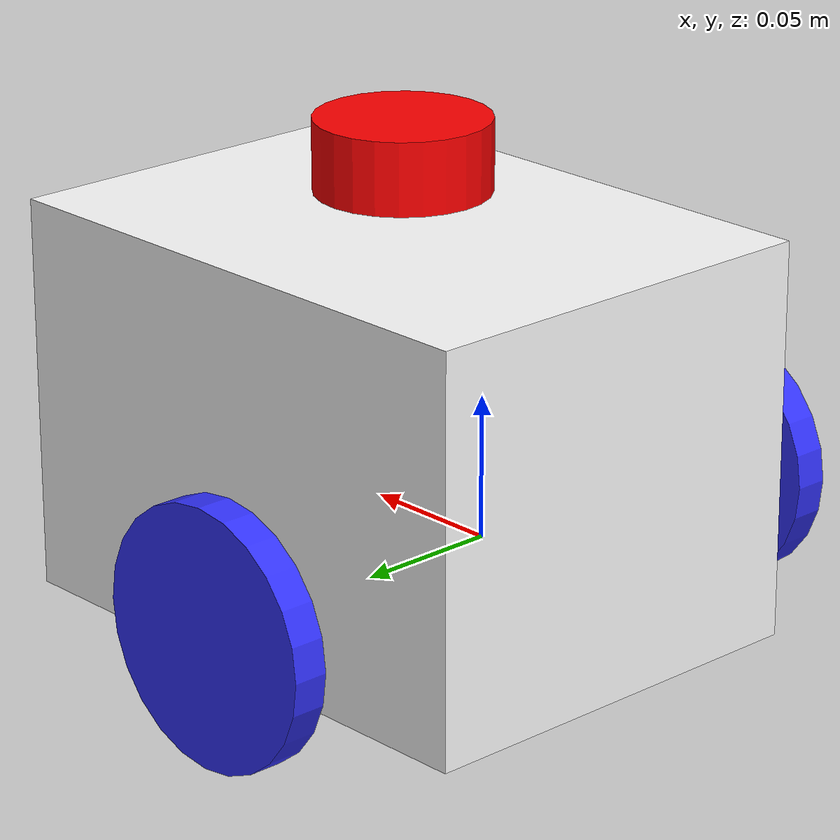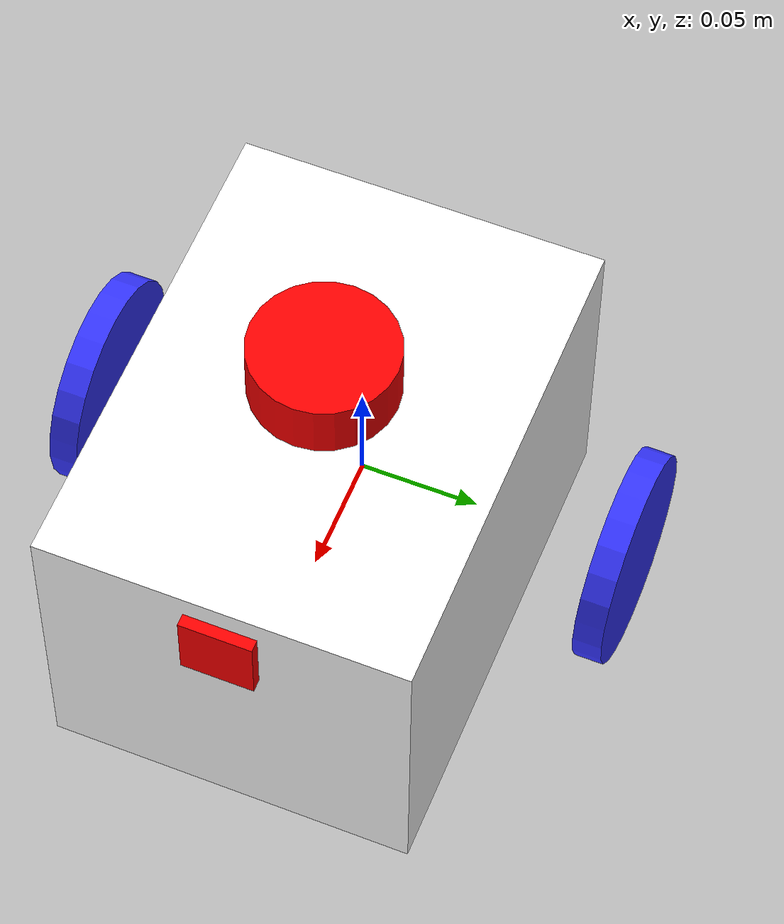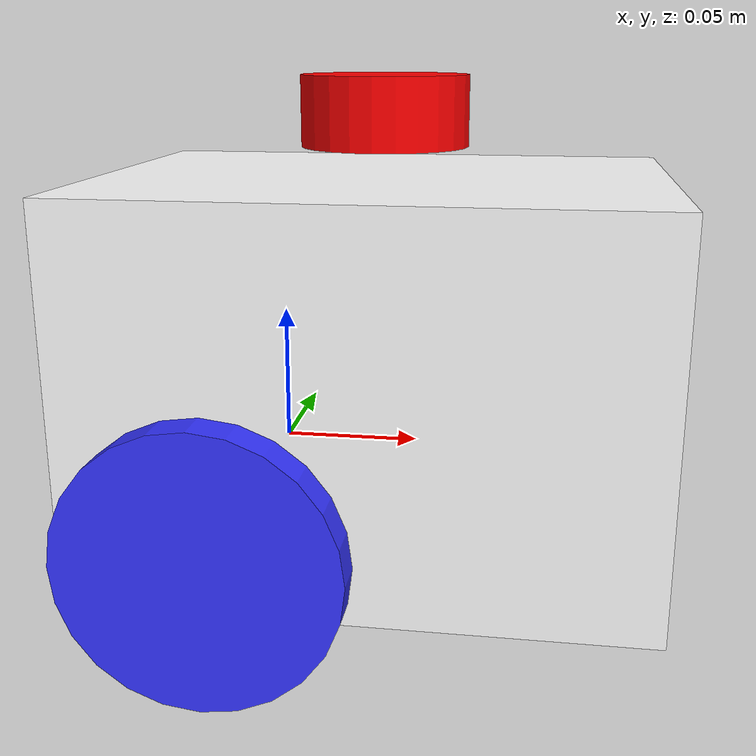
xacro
<?xml version="1.0"?>
<robot xmlns:xacro="http://www.ros.org/wiki/xacro"  name="robot">

    <xacro:arg name="use_ros2_control" default="true"/>
    <xacro:arg name="sim_mode" default="false"/>

    <xacro:include filename="robot_core.xacro" />

    <xacro:if value="$(arg use_ros2_control)">
        <xacro:include filename="ros2_control.xacro" />
    </xacro:if>
    <xacro:unless value="$(arg use_ros2_control)">
        <xacro:include filename="gazebo_control.xacro" />
    </xacro:unless>

    <xacro:include filename="lidar.xacro" />
    <xacro:include filename="camera.xacro"/> <!--safe to use but camera functionality incomplete-->

</robot>

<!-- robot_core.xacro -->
<robot xmlns:xacro="http://www.ros.org/wiki/xacro" >

    <xacro:include filename="inertial_macros.xacro"/>

    <xacro:property name="chassis_length" value="0.2032"/>
    <xacro:property name="chassis_width" value="0.1524"/>
    <xacro:property name="chassis_height" value="0.1397"/>
    <xacro:property name="chassis_mass" value="1.0"/>
    <xacro:property name="wheel_radius" value="0.04445"/>
    <xacro:property name="wheel_thickness" value="0.01215"/>
    <xacro:property name="wheel_mass" value="0.01"/>
    <xacro:property name="wheel_offset_x" value="0.0635"/>
    <xacro:property name="wheel_offset_y" value="0.1143"/>
    <xacro:property name="wheel_offset_z" value="0.0381"/>
    <xacro:property name="caster_wheel_radius" value="0.014"/>
    <xacro:property name="caster_wheel_mass" value="0.01"/>
    <xacro:property name="caster_wheel_offset_x" value="0.1715"/>
    <xacro:property name="caster_wheel_offset_z" value="${wheel_offset_z - wheel_radius + caster_wheel_radius}"/>

    <material name="white">
        <color rgba="1 1 1 1" />
    </material>

    <material name="orange">
        <color rgba="1 0.3 0.1 1" />
    </material>

    <material name="blue">
        <color rgba="0.2 0.2 1 1" />
    </material>

    <material name="black">
        <color rgba="0 0 0 1" />
    </material>

    <material name="red">
        <color rgba="1 0 0 1" />
    </material>

    <!-- BASE LINK -->
    <!--baselink will be on the axes of the drive wheels, centered between the wheels-->
    <!--the rest of the robot will be described w.r. to base_link-->
    <link name="base_link">

    </link>

    <!-- BASE_FOOTPRINT LINK -->

    <joint name="base_footprint_joint" type="fixed">
        <parent link="base_link"/>
        <child link="base_footprint"/>
        <origin xyz="0 0 0" rpy="0 0 0"/>
    </joint>

    <link name="base_footprint">
    </link>

    <!-- CHASSIS LINK -->

    <joint name="chassis_joint" type="fixed">
        <parent link="base_link"/>
        <child link="chassis"/>
        <!--need to adjust origin to align wheels on chassis-->
        <origin xyz="${-wheel_offset_x} 0 ${-wheel_offset_z}"/>
    </joint>

    <link name="chassis">
        <visual>
            <!--need to adjust origin of chassis box to align robopet wheel positions-->
            <!--need to change box geometry, collision, and inertial tags-->
            <origin xyz="${chassis_length/2} 0 ${chassis_height/2}"/>
            <geometry>
                <box size="${chassis_length} ${chassis_width} ${chassis_height}"/>
            </geometry>
            <material name="white"/>
        </visual>
        <collision>
            <origin xyz="${chassis_length/2} 0 ${chassis_height/2}"/>
            <geometry>
                <box size="${chassis_length} ${chassis_width} ${chassis_height}"/>
            </geometry>
        </collision>
        <xacro:inertial_box mass="0.5" x="${chassis_length}" y="${chassis_width}" z="${chassis_height}">
            <origin xyz="${chassis_length/2} 0 ${chassis_height/2}" rpy="0 0 0"/>
        </xacro:inertial_box>
    </link>

    <gazebo reference="chassis">
        <material>Gazebo/White</material>
    </gazebo>

    <!-- LEFT WHEEL LINK -->

    <joint name="left_wheel_joint" type="continuous">
        <parent link="base_link"/>
        <child link="left_wheel"/>
        <!--adjust wheel joint origin to proper chassis width-->
        <origin xyz="0 ${wheel_offset_y} 0" rpy="-${pi/2} 0 0"/>
        <axis xyz="0 0 1"/>
    </joint>

    <link name="left_wheel">
        <!--need to adjust wheel geometry and inertial properties-->
        <visual>
            <geometry>
                <cylinder radius="${wheel_radius}" length="${wheel_thickness}"/>
            </geometry>
            <material name="blue"/>
        </visual>
        <collision>
            <geometry>
                <sphere radius="${wheel_radius}"/>
            </geometry>
        </collision>
        <xacro:inertial_cylinder mass="${wheel_mass}" length="${wheel_thickness}" radius="${wheel_radius}">
            <origin xyz="0 0 0" rpy="0 0 0"/>
        </xacro:inertial_cylinder>
    </link>

    <gazebo reference="left_wheel">
        <material>Gazebo/Blue</material>
    </gazebo>

    <!-- RIGHT WHEEL LINK -->

    <joint name="right_wheel_joint" type="continuous">
        <parent link="base_link"/>
        <child link="right_wheel"/>
        <!--adjust wheel joint origin to proper chassis width-->
        <origin xyz="0 ${-wheel_offset_y} 0" rpy="${pi/2} 0 0"/>
        <axis xyz="0 0 -1"/>
    </joint>

    <link name="right_wheel">
        <!--need to adjust wheel geometry and inertial properties-->
        <visual>
            <geometry>
                <cylinder radius="${wheel_radius}" length="${wheel_thickness}"/>
            </geometry>
            <material name="blue"/>
        </visual>
        <collision>
            <geometry>
                <sphere radius="${wheel_radius}"/>
            </geometry>
        </collision>
        <xacro:inertial_cylinder mass="${wheel_mass}" length="${wheel_thickness}" radius="${wheel_radius}">
            <origin xyz="0 0 0" rpy="0 0 0"/>
        </xacro:inertial_cylinder>
    </link>

    <gazebo reference="right_wheel">
        <material>Gazebo/Blue</material>
    </gazebo>

    <!-- CASTER WHEEL LINK -->
    <!--gonna keep caster wheel as is since it doesn't change much-->

    <joint name="caster_wheel_joint" type="fixed">
        <parent link="chassis"/>
        <child link="caster_wheel"/>
        <!--may adjust origin to align it on bot-->
        <origin xyz="${caster_wheel_offset_x} 0 ${caster_wheel_offset_z}"/>
    </joint>

    <link name="caster_wheel">
        <!--would consider adjusting radius to replicate ride height-->
        <visual>
            <geometry>
                <sphere radius="${caster_wheel_radius}"/>
            </geometry>
            <material name="black"/>
        </visual>
        <collision>
            <geometry>
                <sphere radius="${caster_wheel_radius}"/>
            </geometry>
        </collision>
        <xacro:inertial_sphere mass="${caster_wheel_mass}" radius="${caster_wheel_radius}">
            <origin xyz="0 0 0" rpy="0 0 0"/>
        </xacro:inertial_sphere>
    </link>

    <gazebo reference="caster_wheel">
        <material>Gazebo/Black</material>
        <mu1 value="0.001"/>
        <mu2 value="0.001"/>
    </gazebo>

</robot>

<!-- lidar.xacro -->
<robot xmlns:xacro="http://www.ros.org/wiki/xacro" >

    <joint name="laser_joint" type="fixed">
        <parent link="chassis"/>
        <child link="laser_frame"/>
        <origin xyz="0.1016 0 0.1625" rpy="0 0 0"/>
    </joint>

    <link name="laser_frame">
        <visual>
            <geometry>
                <cylinder radius="0.03" length="0.025"/>
            </geometry>
            <material name="red"/>
        </visual>
        <collision>
            <geometry>
                <cylinder radius="0.03" length="0.025"/>
            </geometry>
        </collision>
        <xacro:inertial_cylinder mass="0.1" length="0.025" radius="0.03">
            <origin xyz="0 0 0" rpy="0 0 0"/>
        </xacro:inertial_cylinder>
    </link>

    <gazebo reference="laser_frame">
        <material>Gazebo/Red</material>
        <sensor name="laser" type="ray">
            <pose> 0 0 0 0 0 0 </pose>
            <visualize>false</visualize>
            <update_rate>10</update_rate>
            <ray>
                <scan>
                    <horizontal>
                        <samples>360</samples>
                        <resolution>1</resolution>
                        <min_angle>-3.14</min_angle>
                        <max_angle>3.14</max_angle>
                    </horizontal>
                </scan>
                <range>
                    <min>0.3</min>
                    <max>12</max>
                    <resolution>0.01</resolution>
                </range>
            </ray>
            <plugin name="laser_controller" filename="libgazebo_ros_ray_sensor.so">
                <ros>
                    <argument>~/out:=scan</argument>
                </ros>
                <output_type>sensor_msgs/LaserScan</output_type>
                <frame_name>laser_frame</frame_name>
            </plugin>
        </sensor>
    </gazebo>

</robot>

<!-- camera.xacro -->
<robot xmlns:xacro="http://www.ros.org/wiki/xacro" >

    <joint name="camera_joint" type="fixed">
        <parent link="chassis"/>
        <child link="camera_link"/>
        <origin xyz="0.2032 0 0.1143" rpy="0 0 0"/>
    </joint>

    <link name="camera_link">
        <visual>
            <geometry>
                <box size="0.01 0.03 0.03"/>
            </geometry>
            <material name="red"/>
        </visual>
    </link>

    <!-- used to convert camera tf to optical standard -->
    <joint name="camera_optical_joint" type="fixed">
        <parent link="camera_link"/>
        <child link="camera_link_optical"/>
        <origin xyz="0 0 0" rpy="${-pi/2} 0 ${-pi/2}"/>
    </joint>

    <link name="camera_link_optical"></link>

    <gazebo reference="camera_link">
        <material>Gazebo/Red</material>
        <sensor name="camera" type="camera">
            <pose> 0 0 0 0 0 0 </pose>
            <visualize>true</visualize>
            <update_rate>10</update_rate>
            <!--may want to adjust camera sim settings to match real camera properties-->
            <camera>
                <horizontal_fov>1.089</horizontal_fov>
                <image>
                    <format>R8G8B8</format>
                    <width>640</width>
                    <height>480</height>
                </image>
                <clip>
                    <near>0.05</near>
                    <far>8.0</far>
                </clip>
            </camera>
            <plugin name="camera_controller" filename="libgazebo_ros_camera.so">
                <frame_name>camera_link_optical</frame_name>
            </plugin>
        </sensor>
    </gazebo>

</robot>
